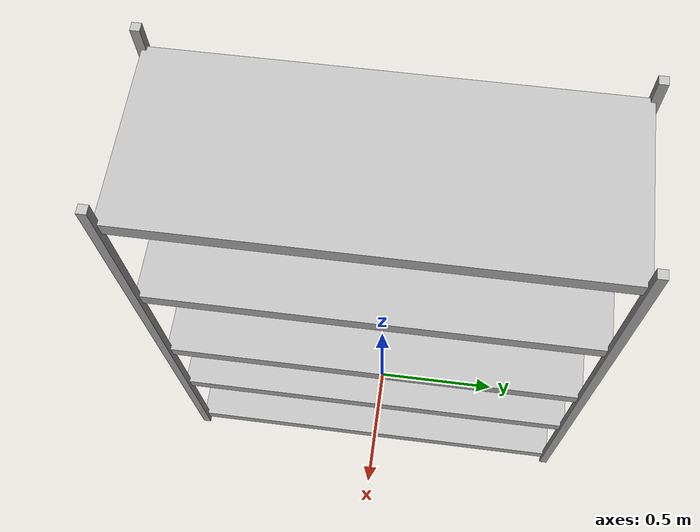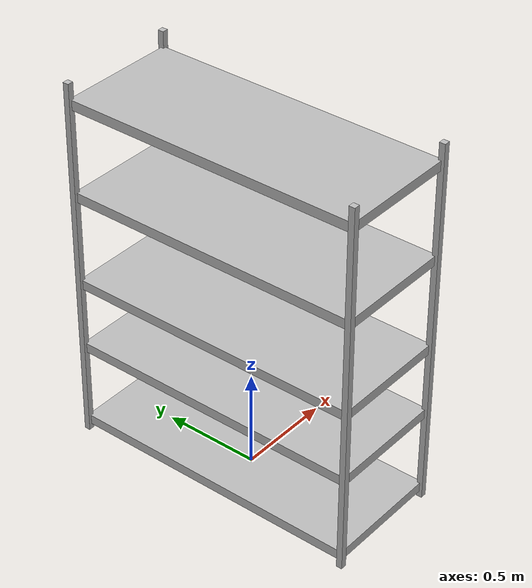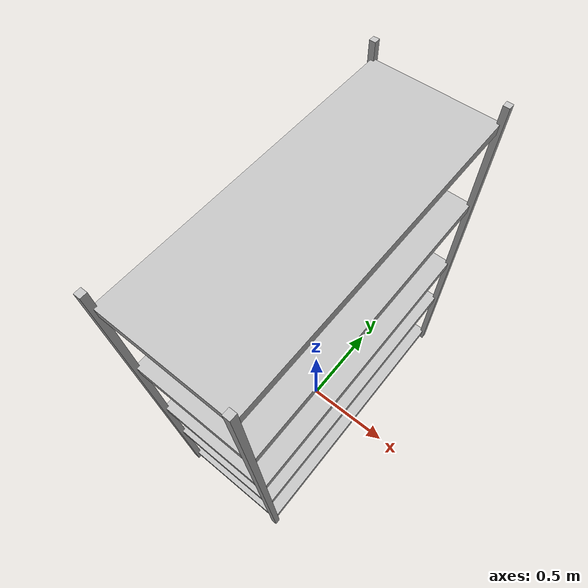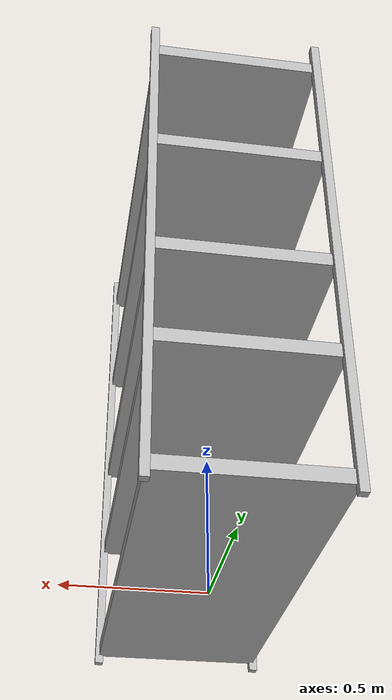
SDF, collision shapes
<?xml version="1.0"?>
<sdf version="1.7">
  <model name="shelves">
    <link name="body">
        <collision name="shelf_1">
            <pose>0.000 0.000 0.055 0 0 0</pose>
            <geometry>
                <box>
                    <size>0.610 1.520 0.050</size>
                </box>
            </geometry>
        </collision>
        <collision name="shelf_2">
            <pose>0.000 0.000 0.487 0 0 0</pose>
            <geometry>
                <box>
                    <size>0.610 1.520 0.050</size>
                </box>
            </geometry>
        </collision>
        <collision name="shelf_3">
            <pose>0.000 0.000 0.847 0 0 0</pose>
            <geometry>
                <box>
                    <size>0.610 1.520 0.050</size>
                </box>
            </geometry>
        </collision>
        <collision name="shelf_4">
            <pose>0.000 0.000 1.319 0 0 0</pose>
            <geometry>
                <box>
                    <size>0.610 1.520 0.050</size>
                </box>
            </geometry>
        </collision>
        <collision name="shelf_5">
            <pose>0.000 0.000 1.791 0 0 0</pose>
            <geometry>
                <box>
                    <size>0.610 1.520 0.050</size>
                </box>
            </geometry>
        </collision>
        <collision name="edge_1">
            <pose>0.305 0.760 0.950 0 0 0</pose>
            <geometry>
                <box>
                    <size>0.030 0.030 1.900</size>
                </box>
            </geometry>
        </collision>
        <collision name="edge_2">
            <pose>0.305 -0.760 0.950 0 0 0</pose>
            <geometry>
                <box>
                    <size>0.030 0.030 1.900</size>
                </box>
            </geometry>
        </collision>
        <collision name="edge_3">
            <pose>-0.305 0.760 0.950 0 0 0</pose>
            <geometry>
                <box>
                    <size>0.030 0.030 1.900</size>
                </box>
            </geometry>
        </collision>
        <collision name="edge_4">
            <pose>-0.305 -0.760 0.950 0 0 0</pose>
            <geometry>
                <box>
                    <size>0.030 0.030 1.900</size>
                </box>
            </geometry>
        </collision>
        <visual name="shelves_visual">
            <pose>-0.0 0.0 0.0 1.57 0.0 0.0</pose>
            <geometry>
                <mesh>
                    <uri>package://rby1_whole_body/models/shelves/IiwaShelvesUpdated.obj</uri>
                </mesh>
            </geometry>
        </visual>
    </link>
  </model>
</sdf>
